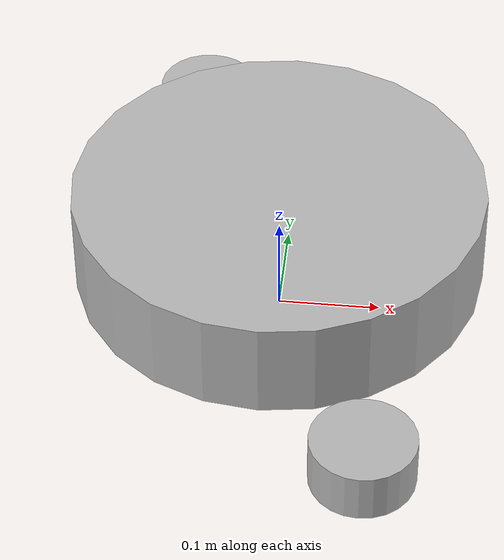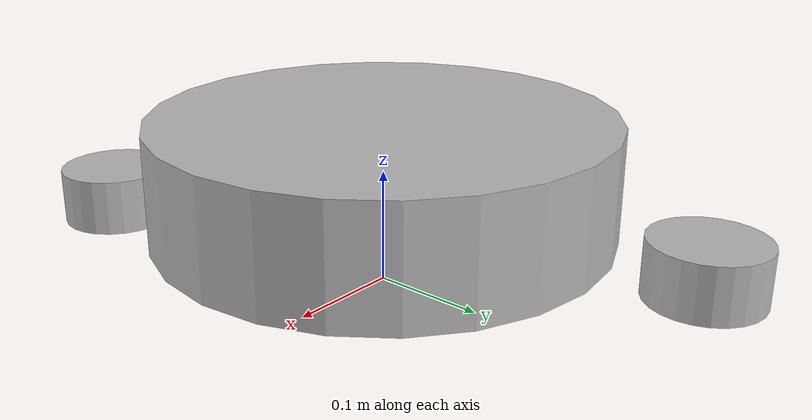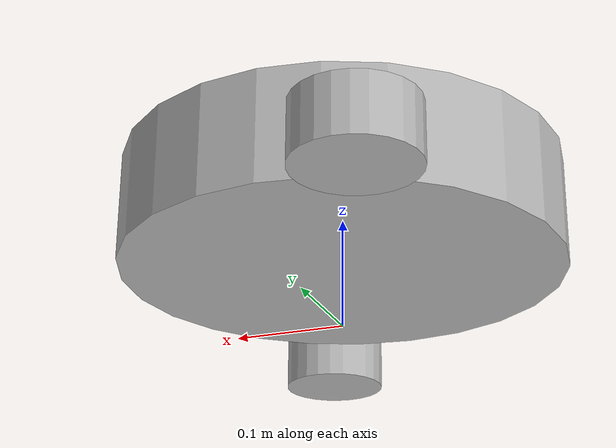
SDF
<?xml version="1.0" ?>
<sdf version="1.9">
  <model name="tugbot">
    <static>false</static>

    <!-- Base link with lidar -->
    <link name="base_link">
      <pose>0 0 0.1 0 0 0</pose>

      <visual name="visual">
        <geometry>
          <cylinder>
            <radius>0.2</radius>
            <length>0.1</length>
          </cylinder>
        </geometry>
      </visual>

      <collision name="collision">
        <geometry>
          <cylinder>
            <radius>0.2</radius>
            <length>0.1</length>
          </cylinder>
        </geometry>
      </collision>

      <!-- ✅ 2D Lidar Sensor -->
      <sensor name="lidar" type="gpu_lidar">
        <pose>0 0 0.25 0 0 0</pose>
        <update_rate>15</update_rate>
        <ray>
          <scan>
            <horizontal>
              <samples>720</samples>
              <resolution>1</resolution>
              <min_angle>-1.5708</min_angle>
              <max_angle>1.5708</max_angle>
            </horizontal>
          </scan>
          <range>
            <min>0.12</min>
            <max>10.0</max>
            <resolution>0.01</resolution>
          </range>
        </ray>
        <plugin name="ros2_laser_bridge" filename="gz-ros2-laser-scan-system">
          <topic>/scan</topic>
          <frame_id>base_link</frame_id>
        </plugin>
      </sensor>
    </link>

    <!-- Left wheel -->
    <link name="left_wheel">
      <pose>-0.1 0.25 0.05 0 0 0</pose>
      <visual name="visual">
        <geometry>
          <cylinder>
            <radius>0.05</radius>
            <length>0.05</length>
          </cylinder>
        </geometry>
      </visual>
      <collision name="collision">
        <geometry>
          <cylinder>
            <radius>0.05</radius>
            <length>0.05</length>
          </cylinder>
        </geometry>
      </collision>
    </link>

    <!-- Right wheel -->
    <link name="right_wheel">
      <pose>0.1 -0.25 0.05 0 0 0</pose>
      <visual name="visual">
        <geometry>
          <cylinder>
            <radius>0.05</radius>
            <length>0.05</length>
          </cylinder>
        </geometry>
      </visual>
      <collision name="collision">
        <geometry>
          <cylinder>
            <radius>0.05</radius>
            <length>0.05</length>
          </cylinder>
        </geometry>
      </collision>
    </link>
    <!-- Lidar Link -->
    <link name="lidar_link">
    <pose>0 0 0.25 0 0 0</pose>
    <sensor name="scan" type="gpu_lidar">
        <pose>0 0 0 0 0 0</pose>
        <update_rate>15</update_rate>
        <ray>
        <scan>
            <horizontal>
            <samples>720</samples>
            <resolution>1</resolution>
            <min_angle>-1.5708</min_angle>
            <max_angle>1.5708</max_angle>
            </horizontal>
        </scan>
        <range>
            <min>0.12</min>
            <max>10.0</max>
            <resolution>0.01</resolution>
        </range>
        </ray>
        <plugin name="ros2_laser_bridge" filename="gz-ros2-laser-scan-system">
        <topic>/scan</topic>
        <frame_id>lidar_link</frame_id>
        </plugin>
    </sensor>
    </link>

    <!-- Joints -->
    <joint name="left_wheel_joint" type="continuous">
      <parent>base_link</parent>
      <child>left_wheel</child>
      <axis>
        <xyz>0 1 0</xyz>
      </axis>
    </joint>

    <joint name="right_wheel_joint" type="continuous">
      <parent>base_link</parent>
      <child>right_wheel</child>
      <axis>
        <xyz>0 1 0</xyz>
      </axis>
    </joint>
    <joint name="lidar_joint" type="fixed">
        <parent>base_link</parent>
        <child>lidar_link</child>
    </joint>

    <!-- Diff Drive Plugin -->
    <plugin name="diff_drive" filename="gz-sim-diff-drive-system">
      <left_joint>left_wheel_joint</left_joint>
      <right_joint>right_wheel_joint</right_joint>
      <wheel_separation>0.5</wheel_separation>
      <wheel_radius>0.05</wheel_radius>
      <topic>/model/tugbot/cmd_vel</topic>
      <odom_topic>/model/tugbot/odometry</odom_topic>
      <publish_odom>true</publish_odom>
      <publish_tf>true</publish_tf>
      <odometry_source>world</odometry_source>
      <frame_id>base_link</frame_id>
      <odom_frame_id>odom</odom_frame_id>
    </plugin>
  </model>
</sdf>
